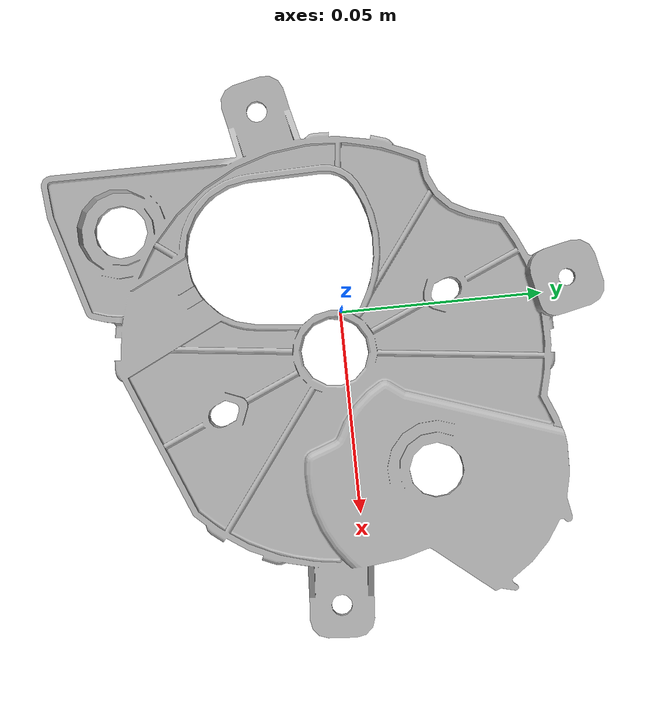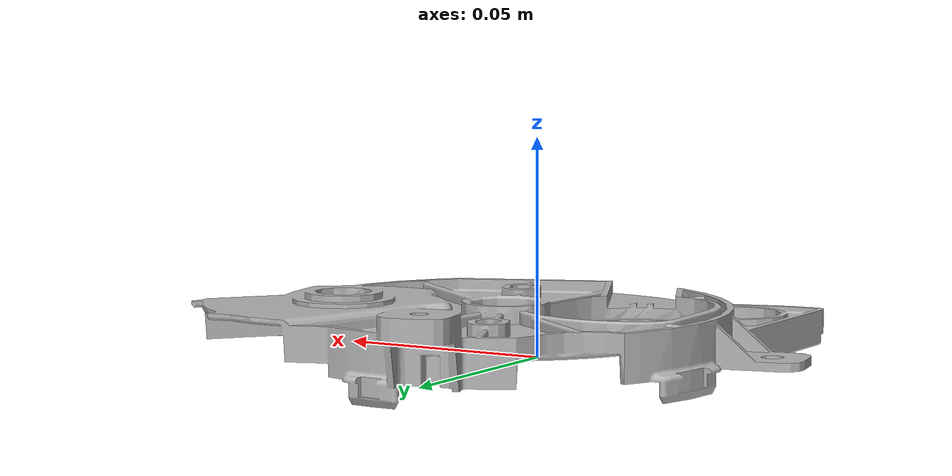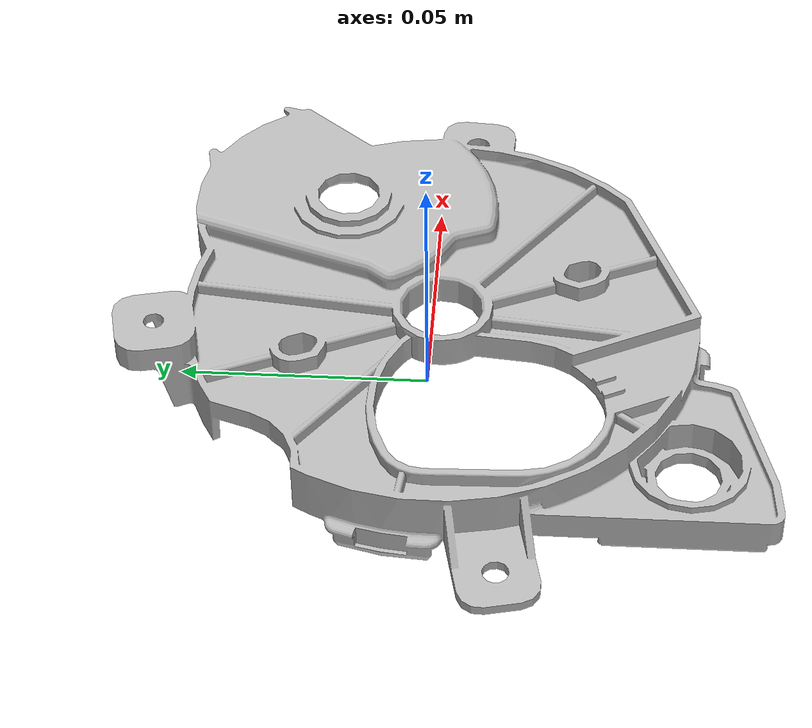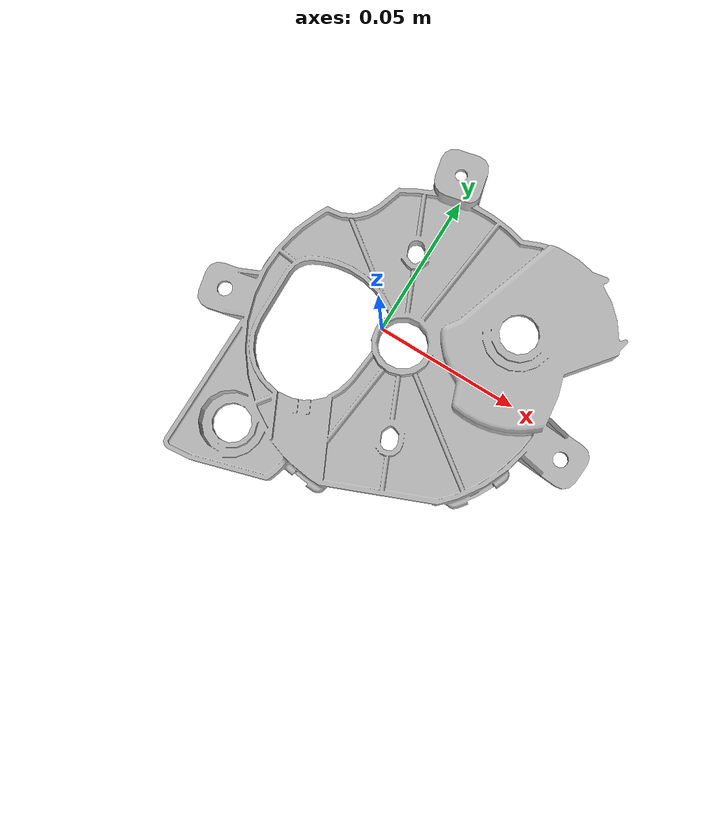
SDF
<?xml version="1.0"?>
<sdf version="1.6">
    <model name="HV6">
        <pose>0 0 0 0 0 0</pose>
        <static>true</static>
        <link name="HV6">
            <collision name="collr">
                <geometry>
                    <mesh>
                        <uri>model://HV6/meshes/HV6_1.stl</uri>
                    </mesh>
                </geometry>
            </collision>
            <visual name="visual">
                <geometry>
                    <mesh>
                        <uri>model://HV6/meshes/HV6_1.stl</uri>
                    </mesh>
                </geometry>
            </visual>
        </link>
    </model>
</sdf>
